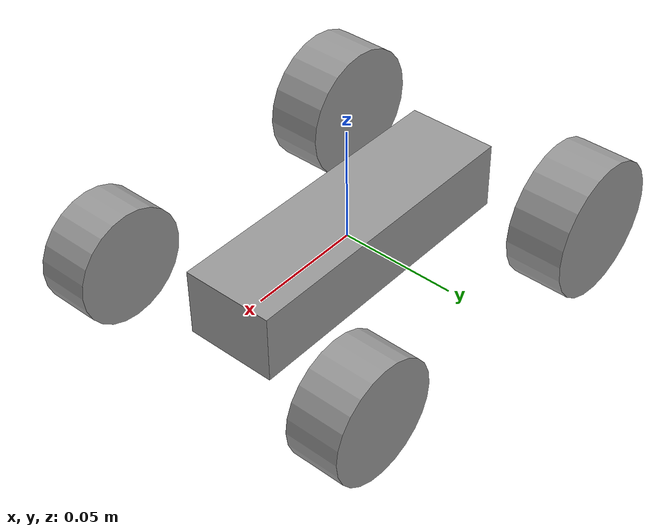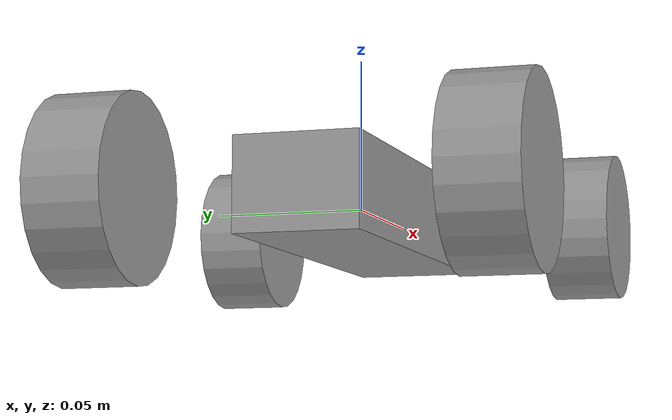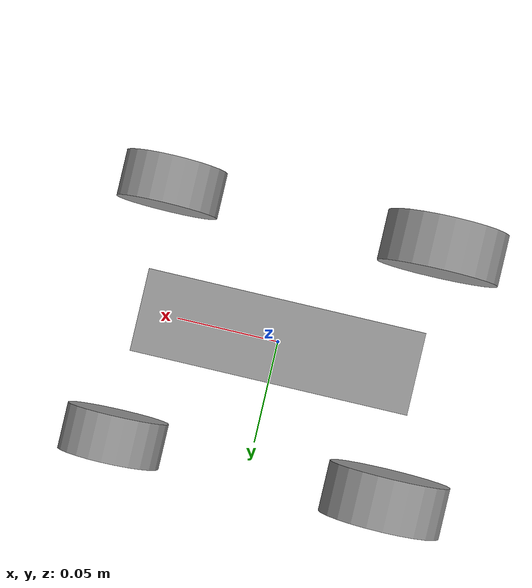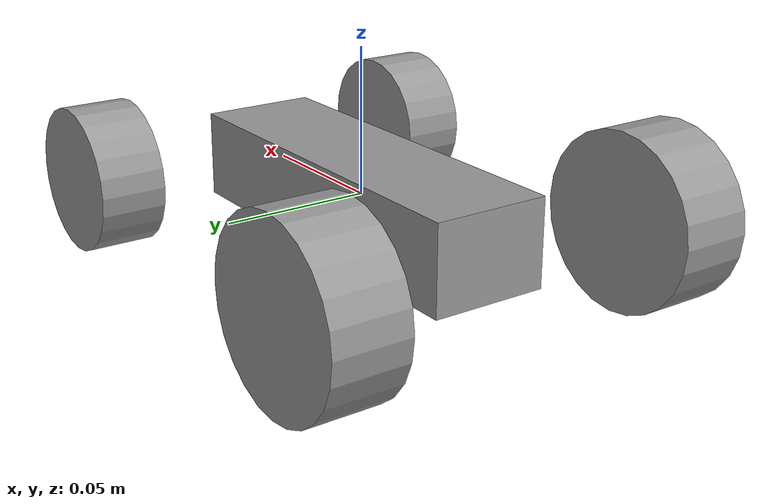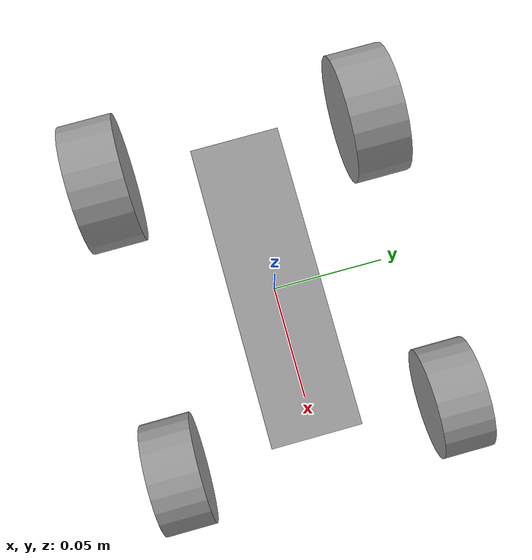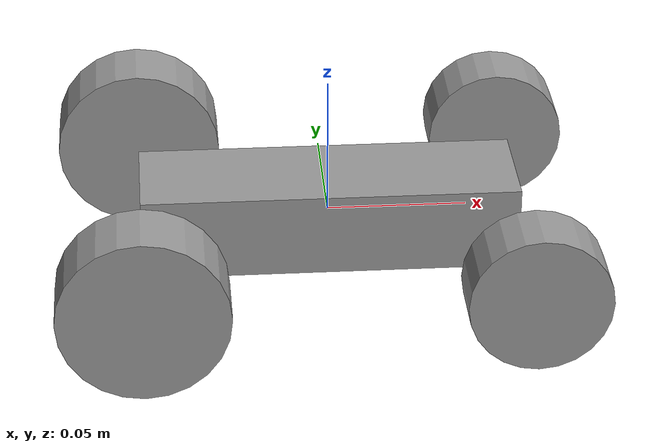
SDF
<?xml version='1.0'?>
<sdf version='1.7'>
  <model name='RCCarOriginal'>
    <link name='link_0'>
      <inertial>
        <mass>1</mass>
        <inertia>
          <ixx>0.145833</ixx>
          <ixy>0</ixy>
          <ixz>0</ixz>
          <iyy>0.145833</iyy>
          <iyz>0</iyz>
          <izz>0.125</izz>
        </inertia>
        <pose>0 0 0 0 -0 0</pose>
      </inertial>
      <pose>-0.0675 -0.0625 -0 3.13973 -1.57079 1.57267</pose>
      <gravity>1</gravity>
      <self_collide>0</self_collide>
      <kinematic>0</kinematic>
      <enable_wind>0</enable_wind>
      <visual name='visual'>
        <pose>0 0 0 0 -0 0</pose>
        <geometry>
          <cylinder>
            <radius>0.03</radius>
            <length>0.025</length>
          </cylinder>
        </geometry>
        <material>
          <lighting>1</lighting>
          <script>
            <uri>file://media/materials/scripts/gazebo.material</uri>
            <name>Gazebo/Grey</name>
          </script>
          <shader type='pixel'>
            <normal_map>__default__</normal_map>
          </shader>
          <ambient>0.3 0.3 0.3 1</ambient>
          <diffuse>0.7 0.7 0.7 1</diffuse>
          <specular>0.01 0.01 0.01 1</specular>
          <emissive>0 0 0 1</emissive>
        </material>
        <transparency>0</transparency>
        <cast_shadows>1</cast_shadows>
      </visual>
      <collision name='collision'>
        <laser_retro>0</laser_retro>
        <max_contacts>10</max_contacts>
        <pose>0 0 0 0 -0 0</pose>
        <geometry>
          <cylinder>
            <radius>0.03</radius>
            <length>0.025</length>
          </cylinder>
        </geometry>
        <surface>
          <friction>
            <ode>
              <mu>1</mu>
              <mu2>1</mu2>
              <fdir1>0 0 0</fdir1>
              <slip1>0</slip1>
              <slip2>0</slip2>
            </ode>
            <torsional>
              <coefficient>1</coefficient>
              <patch_radius>0</patch_radius>
              <surface_radius>0</surface_radius>
              <use_patch_radius>1</use_patch_radius>
              <ode>
                <slip>0</slip>
              </ode>
            </torsional>
          </friction>
          <bounce>
            <restitution_coefficient>0</restitution_coefficient>
            <threshold>1e+06</threshold>
          </bounce>
          <contact>
            <collide_without_contact>0</collide_without_contact>
            <collide_without_contact_bitmask>1</collide_without_contact_bitmask>
            <collide_bitmask>1</collide_bitmask>
            <ode>
              <soft_cfm>0</soft_cfm>
              <soft_erp>0.2</soft_erp>
              <kp>1e+13</kp>
              <kd>1</kd>
              <max_vel>0.01</max_vel>
              <min_depth>0</min_depth>
            </ode>
            <bullet>
              <split_impulse>1</split_impulse>
              <split_impulse_penetration_threshold>-0.01</split_impulse_penetration_threshold>
              <soft_cfm>0</soft_cfm>
              <soft_erp>0.2</soft_erp>
              <kp>1e+13</kp>
              <kd>1</kd>
            </bullet>
          </contact>
        </surface>
      </collision>
    </link>
    <link name='link_0_clone'>
      <inertial>
        <mass>1</mass>
        <inertia>
          <ixx>0.145833</ixx>
          <ixy>0</ixy>
          <ixz>0</ixz>
          <iyy>0.145833</iyy>
          <iyz>0</iyz>
          <izz>0.125</izz>
        </inertia>
        <pose>0 0 0 0 -0 0</pose>
      </inertial>
      <pose>-0.0675 0.0625 0 3.13522 -1.57079 1.57717</pose>
      <gravity>1</gravity>
      <self_collide>0</self_collide>
      <kinematic>0</kinematic>
      <enable_wind>0</enable_wind>
      <visual name='visual'>
        <pose>0 0 0 0 -0 0</pose>
        <geometry>
          <cylinder>
            <radius>0.03</radius>
            <length>0.025</length>
          </cylinder>
        </geometry>
        <material>
          <lighting>1</lighting>
          <script>
            <uri>file://media/materials/scripts/gazebo.material</uri>
            <name>Gazebo/Grey</name>
          </script>
          <shader type='pixel'>
            <normal_map>__default__</normal_map>
          </shader>
          <ambient>0.3 0.3 0.3 1</ambient>
          <diffuse>0.7 0.7 0.7 1</diffuse>
          <specular>0.01 0.01 0.01 1</specular>
          <emissive>0 0 0 1</emissive>
        </material>
        <transparency>0</transparency>
        <cast_shadows>1</cast_shadows>
      </visual>
      <collision name='collision'>
        <laser_retro>0</laser_retro>
        <max_contacts>10</max_contacts>
        <pose>0 0 0 0 -0 0</pose>
        <geometry>
          <cylinder>
            <radius>0.03</radius>
            <length>0.025</length>
          </cylinder>
        </geometry>
        <surface>
          <friction>
            <ode>
              <mu>1</mu>
              <mu2>1</mu2>
              <fdir1>0 0 0</fdir1>
              <slip1>0</slip1>
              <slip2>0</slip2>
            </ode>
            <torsional>
              <coefficient>1</coefficient>
              <patch_radius>0</patch_radius>
              <surface_radius>0</surface_radius>
              <use_patch_radius>1</use_patch_radius>
              <ode>
                <slip>0</slip>
              </ode>
            </torsional>
          </friction>
          <bounce>
            <restitution_coefficient>0</restitution_coefficient>
            <threshold>1e+06</threshold>
          </bounce>
          <contact>
            <collide_without_contact>0</collide_without_contact>
            <collide_without_contact_bitmask>1</collide_without_contact_bitmask>
            <collide_bitmask>1</collide_bitmask>
            <ode>
              <soft_cfm>0</soft_cfm>
              <soft_erp>0.2</soft_erp>
              <kp>1e+13</kp>
              <kd>1</kd>
              <max_vel>0.01</max_vel>
              <min_depth>0</min_depth>
            </ode>
            <bullet>
              <split_impulse>1</split_impulse>
              <split_impulse_penetration_threshold>-0.01</split_impulse_penetration_threshold>
              <soft_cfm>0</soft_cfm>
              <soft_erp>0.2</soft_erp>
              <kp>1e+13</kp>
              <kd>1</kd>
            </bullet>
          </contact>
        </surface>
      </collision>
    </link>
    <link name='link_0_clone_0'>
      <inertial>
        <mass>1</mass>
        <inertia>
          <ixx>0.145833</ixx>
          <ixy>0</ixy>
          <ixz>0</ixz>
          <iyy>0.145833</iyy>
          <iyz>0</iyz>
          <izz>0.125</izz>
        </inertia>
        <pose>0 0 0 0 -0 0</pose>
      </inertial>
      <pose>0.0675 -0.0625 -0 3.13522 -1.57079 1.57717</pose>
      <gravity>1</gravity>
      <self_collide>0</self_collide>
      <kinematic>0</kinematic>
      <enable_wind>0</enable_wind>
      <visual name='visual'>
        <pose>0 0 0 0 -0 0</pose>
        <geometry>
          <cylinder>
            <radius>0.025</radius>
            <length>0.0225</length>
          </cylinder>
        </geometry>
        <material>
          <lighting>1</lighting>
          <script>
            <uri>file://media/materials/scripts/gazebo.material</uri>
            <name>Gazebo/Grey</name>
          </script>
          <shader type='pixel'>
            <normal_map>__default__</normal_map>
          </shader>
          <ambient>0.3 0.3 0.3 1</ambient>
          <diffuse>0.7 0.7 0.7 1</diffuse>
          <specular>0.01 0.01 0.01 1</specular>
          <emissive>0 0 0 1</emissive>
        </material>
        <transparency>0</transparency>
        <cast_shadows>1</cast_shadows>
      </visual>
      <collision name='collision'>
        <laser_retro>0</laser_retro>
        <max_contacts>10</max_contacts>
        <pose>0 0 0 0 -0 0</pose>
        <geometry>
          <cylinder>
            <radius>0.025</radius>
            <length>0.0225</length>
          </cylinder>
        </geometry>
        <surface>
          <friction>
            <ode>
              <mu>1</mu>
              <mu2>1</mu2>
              <fdir1>0 0 0</fdir1>
              <slip1>0</slip1>
              <slip2>0</slip2>
            </ode>
            <torsional>
              <coefficient>1</coefficient>
              <patch_radius>0</patch_radius>
              <surface_radius>0</surface_radius>
              <use_patch_radius>1</use_patch_radius>
              <ode>
                <slip>0</slip>
              </ode>
            </torsional>
          </friction>
          <bounce>
            <restitution_coefficient>0</restitution_coefficient>
            <threshold>1e+06</threshold>
          </bounce>
          <contact>
            <collide_without_contact>0</collide_without_contact>
            <collide_without_contact_bitmask>1</collide_without_contact_bitmask>
            <collide_bitmask>1</collide_bitmask>
            <ode>
              <soft_cfm>0</soft_cfm>
              <soft_erp>0.2</soft_erp>
              <kp>1e+13</kp>
              <kd>1</kd>
              <max_vel>0.01</max_vel>
              <min_depth>0</min_depth>
            </ode>
            <bullet>
              <split_impulse>1</split_impulse>
              <split_impulse_penetration_threshold>-0.01</split_impulse_penetration_threshold>
              <soft_cfm>0</soft_cfm>
              <soft_erp>0.2</soft_erp>
              <kp>1e+13</kp>
              <kd>1</kd>
            </bullet>
          </contact>
        </surface>
      </collision>
    </link>
    <link name='link_0_clone_0_clone'>
      <inertial>
        <mass>1</mass>
        <inertia>
          <ixx>0.145833</ixx>
          <ixy>0</ixy>
          <ixz>0</ixz>
          <iyy>0.145833</iyy>
          <iyz>0</iyz>
          <izz>0.125</izz>
        </inertia>
        <pose>0 0 0 0 -0 0</pose>
      </inertial>
      <pose>0.0675 0.0625 0 3.13522 -1.57079 1.57717</pose>
      <gravity>1</gravity>
      <self_collide>0</self_collide>
      <kinematic>0</kinematic>
      <enable_wind>0</enable_wind>
      <visual name='visual'>
        <pose>0 0 0 0 -0 0</pose>
        <geometry>
          <cylinder>
            <radius>0.025</radius>
            <length>0.0225</length>
          </cylinder>
        </geometry>
        <material>
          <lighting>1</lighting>
          <script>
            <uri>file://media/materials/scripts/gazebo.material</uri>
            <name>Gazebo/Grey</name>
          </script>
          <shader type='pixel'>
            <normal_map>__default__</normal_map>
          </shader>
          <ambient>0.3 0.3 0.3 1</ambient>
          <diffuse>0.7 0.7 0.7 1</diffuse>
          <specular>0.01 0.01 0.01 1</specular>
          <emissive>0 0 0 1</emissive>
        </material>
        <transparency>0</transparency>
        <cast_shadows>1</cast_shadows>
      </visual>
      <collision name='collision'>
        <laser_retro>0</laser_retro>
        <max_contacts>10</max_contacts>
        <pose>0 0 0 0 -0 0</pose>
        <geometry>
          <cylinder>
            <radius>0.025</radius>
            <length>0.0225</length>
          </cylinder>
        </geometry>
        <surface>
          <friction>
            <ode>
              <mu>1</mu>
              <mu2>1</mu2>
              <fdir1>0 0 0</fdir1>
              <slip1>0</slip1>
              <slip2>0</slip2>
            </ode>
            <torsional>
              <coefficient>1</coefficient>
              <patch_radius>0</patch_radius>
              <surface_radius>0</surface_radius>
              <use_patch_radius>1</use_patch_radius>
              <ode>
                <slip>0</slip>
              </ode>
            </torsional>
          </friction>
          <bounce>
            <restitution_coefficient>0</restitution_coefficient>
            <threshold>1e+06</threshold>
          </bounce>
          <contact>
            <collide_without_contact>0</collide_without_contact>
            <collide_without_contact_bitmask>1</collide_without_contact_bitmask>
            <collide_bitmask>1</collide_bitmask>
            <ode>
              <soft_cfm>0</soft_cfm>
              <soft_erp>0.2</soft_erp>
              <kp>1e+13</kp>
              <kd>1</kd>
              <max_vel>0.01</max_vel>
              <min_depth>0</min_depth>
            </ode>
            <bullet>
              <split_impulse>1</split_impulse>
              <split_impulse_penetration_threshold>-0.01</split_impulse_penetration_threshold>
              <soft_cfm>0</soft_cfm>
              <soft_erp>0.2</soft_erp>
              <kp>1e+13</kp>
              <kd>1</kd>
            </bullet>
          </contact>
        </surface>
      </collision>
    </link>
    <link name='link_1'>
      <inertial>
        <mass>1</mass>
        <inertia>
          <ixx>0.166667</ixx>
          <ixy>0</ixy>
          <ixz>0</ixz>
          <iyy>0.166667</iyy>
          <iyz>0</iyz>
          <izz>0.166667</izz>
        </inertia>
        <pose>0 0 0 0 -0 0</pose>
      </inertial>
      <pose>0 0 0 0 -0 0</pose>
      <gravity>1</gravity>
      <self_collide>0</self_collide>
      <kinematic>0</kinematic>
      <enable_wind>0</enable_wind>
      <visual name='visual'>
        <pose>0 0 0 0 -0 0</pose>
        <geometry>
          <box>
            <size>0.135 0.04 0.03</size>
          </box>
        </geometry>
        <material>
          <lighting>1</lighting>
          <script>
            <uri>file://media/materials/scripts/gazebo.material</uri>
            <name>Gazebo/Grey</name>
          </script>
          <shader type='pixel'>
            <normal_map>__default__</normal_map>
          </shader>
          <ambient>0.3 0.3 0.3 1</ambient>
          <diffuse>0.7 0.7 0.7 1</diffuse>
          <specular>0.01 0.01 0.01 1</specular>
          <emissive>0 0 0 1</emissive>
        </material>
        <transparency>0</transparency>
        <cast_shadows>1</cast_shadows>
      </visual>
      <collision name='collision'>
        <laser_retro>0</laser_retro>
        <max_contacts>10</max_contacts>
        <pose>0 0 0 0 -0 0</pose>
        <geometry>
          <box>
            <size>0.135 0.04 0.03</size>
          </box>
        </geometry>
        <surface>
          <friction>
            <ode>
              <mu>1</mu>
              <mu2>1</mu2>
              <fdir1>0 0 0</fdir1>
              <slip1>0</slip1>
              <slip2>0</slip2>
            </ode>
            <torsional>
              <coefficient>1</coefficient>
              <patch_radius>0</patch_radius>
              <surface_radius>0</surface_radius>
              <use_patch_radius>1</use_patch_radius>
              <ode>
                <slip>0</slip>
              </ode>
            </torsional>
          </friction>
          <bounce>
            <restitution_coefficient>0</restitution_coefficient>
            <threshold>1e+06</threshold>
          </bounce>
          <contact>
            <collide_without_contact>0</collide_without_contact>
            <collide_without_contact_bitmask>1</collide_without_contact_bitmask>
            <collide_bitmask>1</collide_bitmask>
            <ode>
              <soft_cfm>0</soft_cfm>
              <soft_erp>0.2</soft_erp>
              <kp>1e+13</kp>
              <kd>1</kd>
              <max_vel>0.01</max_vel>
              <min_depth>0</min_depth>
            </ode>
            <bullet>
              <split_impulse>1</split_impulse>
              <split_impulse_penetration_threshold>-0.01</split_impulse_penetration_threshold>
              <soft_cfm>0</soft_cfm>
              <soft_erp>0.2</soft_erp>
              <kp>1e+13</kp>
              <kd>1</kd>
            </bullet>
          </contact>
        </surface>
      </collision>
    </link>
    <static>0</static>
    <allow_auto_disable>1</allow_auto_disable>
  </model>
</sdf>
